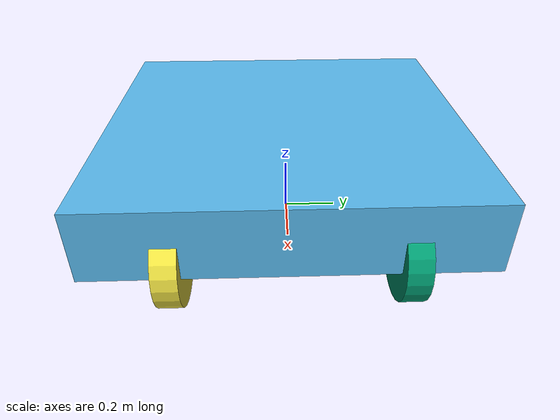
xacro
<?xml version="1.0"?>
<robot name="beach_robot" xmlns:xacro="http://ros.org/wiki/xacro">

  <!-- =========================
       Defaults (tune later)
       ========================= -->
  <xacro:property name="wheel_radius" value="0.165"/>
  <xacro:property name="wheel_width"  value="0.08"/>
  <xacro:property name="wheelbase"    value="0.975"/>
  <xacro:property name="front_track_width" value="0.75"/>
  <xacro:property name="rear_track_width"  value="1.17"/>
  <xacro:property name="base_length"  value="1.20"/>
  <xacro:property name="base_width"   value="1.30"/>
  <xacro:property name="base_height"  value="0.25"/>

  <!-- frames -->
  <xacro:property name="base_frame" value="base_link"/>
  <xacro:property name="imu_frame"  value="imu_link"/>
  <xacro:property name="gps_frame"  value="gps_link"/>
  <xacro:property name="zed_frame"  value="zed_link"/>
  <xacro:property name="us_front"   value="ultrasonic_front_link"/>
  <xacro:property name="us_left"    value="ultrasonic_left_link"/>
  <xacro:property name="us_right"   value="ultrasonic_right_link"/>

  <!-- =========================
       Base footprint (root at ground, no inertia)
       ========================= -->
  <link name="base_footprint"/>

  <!-- base_link is robot body frame (center of chassis) -->
  <joint name="base_footprint_to_base_link" type="fixed">
    <parent link="base_footprint"/>
    <child link="${base_frame}"/>
    <!-- base_link height above ground -->
    <origin xyz="0 0 ${wheel_radius + base_height/2}" rpy="0 0 0"/>
  </joint>

  <!-- =========================
       Base link
       ========================= -->
    <link name="${base_frame}">
      <inertial>
        <origin xyz="0 0 0" rpy="0 0 0"/>
        <mass value="60.0"/>
        <inertia ixx="3.0" ixy="0" ixz="0" iyy="5.0" iyz="0" izz="6.0"/>
      </inertial>

      <visual>
        <origin xyz="0 0 0" rpy="0 0 0"/>
        <geometry>
          <box size="${base_length} ${base_width} ${base_height}"/>
        </geometry>
      </visual>

      <collision>
        <origin xyz="0 0 0" rpy="0 0 0"/>
        <geometry>
          <box size="${base_length} ${base_width} ${base_height}"/>
        </geometry>
      </collision>
    </link>

  <!-- =========================
       Wheel macro
       ========================= -->
  <xacro:macro name="wheel" params="name x y axis_sign:=1">
    <link name="${name}_link">
      <inertial>
        <origin xyz="0 0 0" rpy="0 0 0"/>
        <mass value="2.0"/>
        <inertia ixx="0.02" ixy="0" ixz="0" iyy="0.02" iyz="0" izz="0.02"/>
      </inertial>
      <visual>
        <origin xyz="0 0 0" rpy="1.5708 0 0"/>
        <geometry>
          <cylinder radius="${wheel_radius}" length="${wheel_width}"/>
        </geometry>
      </visual>
      <collision>
        <origin xyz="0 0 0" rpy="1.5708 0 0"/>
        <geometry>
          <cylinder radius="${wheel_radius}" length="${wheel_width}"/>
        </geometry>
      </collision>
    </link>

      <joint name="${name}_joint" type="continuous">
        <parent link="${base_frame}"/>
        <child link="${name}_link"/>
        <!-- wheel center at chassis bottom plane -->
        <origin xyz="${x} ${y} ${-base_height/2}" rpy="0 0 0"/>
        <axis xyz="0 ${axis_sign} 0"/>
        <limit effort="20.0" velocity="50.0"/>
      </joint>

  </xacro:macro>

  <!-- 4 wheels (front pair = tracks in real life, but in sim treat as wheels for skid-drive) -->
  <xacro:wheel name="front_left"  x="${ wheelbase/2}" y="${ front_track_width/2}" axis_sign="1"/>
  <xacro:wheel name="front_right" x="${ wheelbase/2}" y="${-front_track_width/2}" axis_sign="1"/>
  <xacro:wheel name="rear_left"   x="${-wheelbase/2}" y="${ rear_track_width/2}" axis_sign="1"/>
  <xacro:wheel name="rear_right"  x="${-wheelbase/2}" y="${-rear_track_width/2}" axis_sign="1"/>

  <xacro:macro name="wheel_contact" params="link
                                           mu_roll:=0.8 mu_lat:=0.12
                                           slip_roll:=0.0 slip_lat:=0.25
                                           kp:=5000000 kd:=80.0">
    <gazebo reference="${link}">
      <!-- ลด mu2 / เพิ่ม slip2 เพื่อมให้เลี้ยวง่ายขึ้น -->
      <mu1>${mu_roll}</mu1>
      <mu2>${mu_lat}</mu2>

      <kp>${kp}</kp>
      <kd>${kd}</kd>

      <fdir1>1 0 0</fdir1>

      <slip1>${slip_roll}</slip1>
      <slip2>${slip_lat}</slip2>
    </gazebo>
  </xacro:macro>

  <xacro:wheel_contact link="front_left_link"/>
  <xacro:wheel_contact link="front_right_link"/>
  <xacro:wheel_contact link="rear_left_link"/>
  <xacro:wheel_contact link="rear_right_link"/>

  <!-- =========================
       Sensor frames (static)
       ========================= -->
  <link name="${imu_frame}"/>
  <joint name="imu_joint" type="fixed">
    <parent link="${base_frame}"/>
    <child link="${imu_frame}"/>
    <origin xyz="0.10 0.00 0.20" rpy="0 0 0"/>
  </joint>

  <link name="${gps_frame}"/>
  <joint name="gps_joint" type="fixed">
    <parent link="${base_frame}"/>
    <child link="${gps_frame}"/>
    <origin xyz="0.30 0.00 0.50" rpy="0 0 0"/>
  </joint>

  <link name="${zed_frame}"/>
  <joint name="zed_joint" type="fixed">
    <parent link="${base_frame}"/>
    <child link="${zed_frame}"/>
    <origin xyz="0.35 0.00 0.45" rpy="0 0 0"/>
  </joint>

  <link name="${us_front}"/>
  <joint name="us_front_joint" type="fixed">
    <parent link="${base_frame}"/>
    <child link="${us_front}"/>
    <origin xyz="0.50 0.00 0.25" rpy="0 0 0"/>
  </joint>

  <link name="${us_left}"/>
  <joint name="us_left_joint" type="fixed">
    <parent link="${base_frame}"/>
    <child link="${us_left}"/>
    <origin xyz="0.30 0.20 0.25" rpy="0 0 0.35"/>
  </joint>

  <link name="${us_right}"/>
  <joint name="us_right_joint" type="fixed">
    <parent link="${base_frame}"/>
    <child link="${us_right}"/>
    <origin xyz="0.30 -0.20 0.25" rpy="0 0 -0.35"/>
  </joint>

  <!-- =========================
       ros2_control (diff drive over 4 wheel joints)
       ========================= -->
  <ros2_control name="GazeboSystem" type="system">
    <hardware>
      <plugin>gazebo_ros2_control/GazeboSystem</plugin>
    </hardware>

    <joint name="front_left_joint">
      <command_interface name="velocity"/>
      <state_interface name="position"/>
      <state_interface name="velocity"/>
    </joint>

    <joint name="rear_left_joint">
      <command_interface name="velocity"/>
      <state_interface name="position"/>
      <state_interface name="velocity"/>
    </joint>

    <joint name="front_right_joint">
      <command_interface name="velocity"/>
      <state_interface name="position"/>
      <state_interface name="velocity"/>
    </joint>

    <joint name="rear_right_joint">
      <command_interface name="velocity"/>
      <state_interface name="position"/>
      <state_interface name="velocity"/>
    </joint>
</ros2_control>

  <!-- =========================
       Gazebo plugins: IMU, Depth camera, Ultrasonic range sensors
       ========================= -->

  <xacro:arg name="controllers_yaml" default=""/>
  <gazebo>
    <plugin name="gazebo_ros2_control" filename="libgazebo_ros2_control.so">
      <parameters>$(arg controllers_yaml)</parameters>
    </plugin>
  </gazebo>

  <!-- IMU -->
  <gazebo reference="${imu_frame}">
    <sensor name="imu_sensor" type="imu">
      <always_on>true</always_on>
      <update_rate>100</update_rate>
      <imu>
        <angular_velocity>
          <x><noise type="gaussian"><mean>0</mean><stddev>0.002</stddev></noise></x>
          <y><noise type="gaussian"><mean>0</mean><stddev>0.002</stddev></noise></y>
          <z><noise type="gaussian"><mean>0</mean><stddev>0.002</stddev></noise></z>
        </angular_velocity>
        <linear_acceleration>
          <x><noise type="gaussian"><mean>0</mean><stddev>0.05</stddev></noise></x>
          <y><noise type="gaussian"><mean>0</mean><stddev>0.05</stddev></noise></y>
          <z><noise type="gaussian"><mean>0</mean><stddev>0.05</stddev></noise></z>
        </linear_acceleration>
      </imu>
      <plugin name="imu_plugin" filename="libgazebo_ros_imu_sensor.so">
        <ros>
          <remapping>~/out:=/imu/data</remapping>
        </ros>
        <frame_name>${imu_frame}</frame_name>
      </plugin>
    </sensor>
  </gazebo>

  <!-- Depth camera (simulate ZED) -->
  <gazebo reference="${zed_frame}">
    <sensor name="zed_rgb" type="camera">
      <always_on>true</always_on>
      <update_rate>30</update_rate>

      <camera>
        <horizontal_fov>1.0</horizontal_fov>
        <image>
          <width>640</width>
          <height>360</height>
          <format>R8G8B8</format>
        </image>
        <clip>
          <near>0.2</near>
          <far>10.0</far>
        </clip>
      </camera>

      <plugin name="zed_camera_plugin" filename="libgazebo_ros_camera.so">
        <ros>
          <namespace>/zed</namespace>
          <remapping>~/image_raw:=/zed/image_raw</remapping>
          <remapping>~/camera_info:=/zed/camera_info</remapping>
        </ros>
        <frame_name>${zed_frame}</frame_name>
      </plugin>
    </sensor>
  </gazebo>

  <!-- Ultrasonic sensors (range) -->
  <xacro:macro name="ultrasonic" params="ref name topic">
    <gazebo reference="${ref}">
      <sensor name="${name}" type="ray">
        <always_on>true</always_on>
        <update_rate>20</update_rate>

        <ray>
          <scan>
            <horizontal>
              <samples>5</samples>
              <resolution>1</resolution>
              <min_angle>-0.2</min_angle>
              <max_angle>0.2</max_angle>
            </horizontal>
          </scan>
          <range>
            <min>0.02</min>
            <max>3.0</max>
            <resolution>0.01</resolution>
          </range>
        </ray>

        <plugin name="${name}_plugin" filename="libgazebo_ros_ray_sensor.so">
          <ros>
            <remapping>~/out:=${topic}</remapping>
          </ros>
          <frame_name>${ref}</frame_name>
          <output_type>sensor_msgs/LaserScan</output_type>
        </plugin>
      </sensor>
    </gazebo>
  </xacro:macro>

  <xacro:ultrasonic ref="${us_front}" name="us_front" topic="/ultrasonic/front"/>
  <xacro:ultrasonic ref="${us_left}"  name="us_left"  topic="/ultrasonic/left"/>
  <xacro:ultrasonic ref="${us_right}" name="us_right" topic="/ultrasonic/right"/>

</robot>
